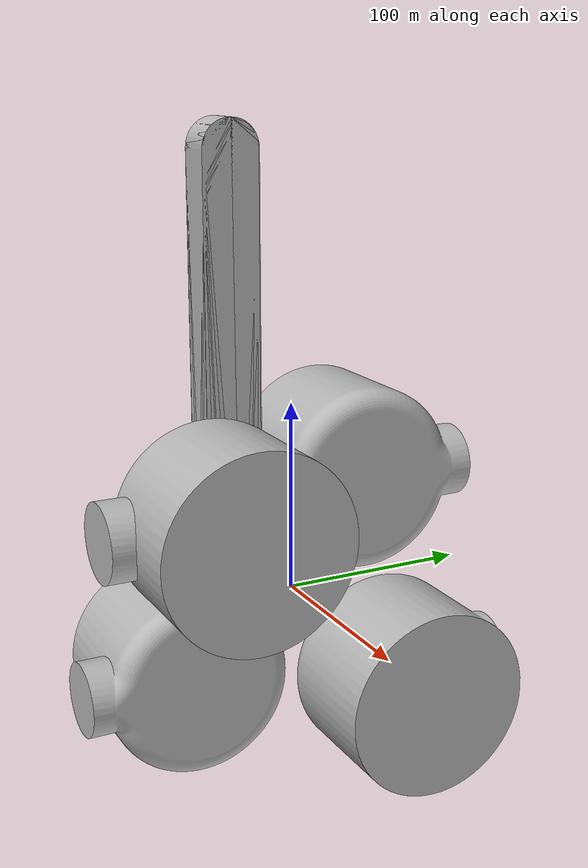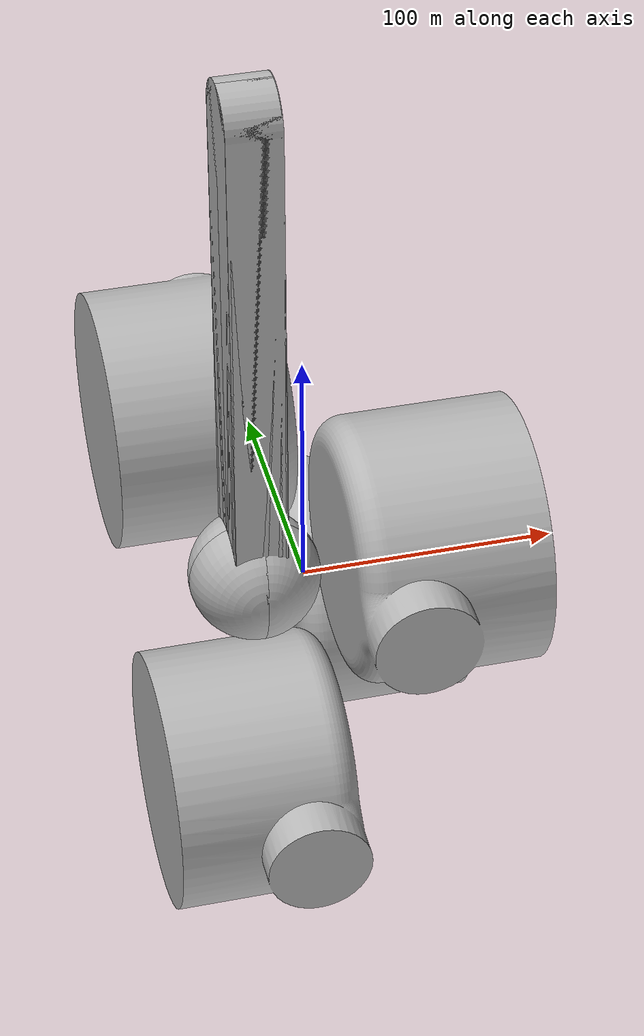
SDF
<?xml version="1.0" ?>

<sdf version="1.5">
  <model name="orthrus">

    <!-- LINK BODY -->
    <link name="body">
      <pose>0 0 0 1.5708 0 0</pose>
      <collision name="surface">
        <pose>-0.10 -0.05 -0.1385 0 0 0</pose>
        <geometry>
          <mesh>
            <uri>model://orthrus/meshes/body.STL</uri>
          </mesh>
        </geometry>
      </collision>

      <visual name="visual">
        <pose>-0.10 -0.05 -0.1385 0 0 0</pose>
        <geometry>
          <mesh>
            <uri>model://orthrus/meshes/body.STL</uri>
          </mesh>
        </geometry>
      </visual>
    </link>

    <!-- LINK HIP -->
    <link name="hip_RB">
      <pose>-0.05 0.20 0 1.5708 3.1415 0</pose>
      <collision name="surface">
        <pose>-0.02 -0.05 -0.05 0 0 0</pose>
        <geometry>
          <mesh>
            <uri>model://orthrus/meshes/hip.STL</uri>
          </mesh>
        </geometry>
      </collision>

      <visual name="visual">
        <pose>-0.02 -0.05 -0.05 0 0 0</pose>
        <geometry>
          <mesh>
            <uri>model://orthrus/meshes/hip.STL</uri>
          </mesh>
        </geometry>
      </visual>
    </link>

    <link name="hip_LB">
      <pose>0.05 0.20 0 1.5708 0 0</pose>
      <collision name="surface">
        <pose>-0.02 -0.05 -0.05 0 0 0</pose>
        <geometry>
          <mesh>
            <uri>model://orthrus/meshes/hip.STL</uri>
          </mesh>
        </geometry>
      </collision>

      <visual name="visual">
        <pose>-0.02 -0.05 -0.05 0 0 0</pose>
        <geometry>
          <mesh>
            <uri>model://orthrus/meshes/hip.STL</uri>
          </mesh>
        </geometry>
      </visual>
    </link>

    <link name="hip_RF">
      <pose>-0.05 -0.20 0 -1.5708 3.1415 0</pose>
      <collision name="surface">
        <pose>-0.02 -0.05 -0.05 0 0 0</pose>
        <geometry>
          <mesh>
            <uri>model://orthrus/meshes/hip.STL</uri>
          </mesh>
        </geometry>
      </collision>

      <visual name="visual">
        <pose>-0.02 -0.05 -0.05 0 0 0</pose>
        <geometry>
          <mesh>
            <uri>model://orthrus/meshes/hip.STL</uri>
          </mesh>
        </geometry>
      </visual>
    </link>

    <link name="hip_LF">
      <pose>0.05 -0.20 0 -1.5708 0 0</pose>
      <collision name="surface">
        <pose>-0.02 -0.05 -0.05 0 0 0</pose>
        <geometry>
          <mesh>
            <scale>1 1 1</scale>
            <uri>model://orthrus/meshes/hip.STL</uri>
          </mesh>
        </geometry>
      </collision>

      <visual name="visual">
        <pose>-0.02 -0.05 -0.05 0 0 0</pose>
        <geometry>
          <mesh>
            <uri>model://orthrus/meshes/hip.STL</uri>
          </mesh>
        </geometry>
      </visual>
    </link>

    <!-- LINK LEG1 -->
    <link name="leg1_RB">
      <pose>-0.1 0.20 0 3.1415 3.1415 0</pose>
      <collision name="surface">
        <pose>0 -0.2 -0.05 0 0 0</pose>
        <geometry>
          <mesh>
            <uri>model://orthrus/meshes/leg1.STL</uri>
          </mesh>
        </geometry>
      </collision>

      <visual name="visual">
        <pose>0 -0.2 -0.05 0 0 0</pose>
        <geometry>
          <mesh>
            <uri>model://orthrus/meshes/leg1.STL</uri>
          </mesh>
        </geometry>
      </visual>
    </link>

    <link name="leg1_LB">
      <pose>0.1 0.20 0 3.1415 0 0</pose>
      <collision name="surface">
        <pose>0 -0.2 -0.05 0 0 0</pose>
        <geometry>
          <mesh>
            <uri>model://orthrus/meshes/leg1.STL</uri>
          </mesh>
        </geometry>
      </collision>

      <visual name="visual">
        <pose>0 -0.2 -0.05 0 0 0</pose>
        <geometry>
          <mesh>
            <uri>model://orthrus/meshes/leg1.STL</uri>
          </mesh>
        </geometry>
      </visual>
    </link>

    <link name="leg1_RF">
      <pose>-0.1 -0.20 0 0 0 3.1415</pose>
      <collision name="surface">
        <pose>0 -0.2 -0.05 0 0 0</pose>
        <geometry>
          <mesh>
            <uri>model://orthrus/meshes/leg1.STL</uri>
          </mesh>
        </geometry>
      </collision>

      <visual name="visual">
        <pose>0 -0.2 -0.05 0 0 0</pose>
        <geometry>
          <mesh>
            <uri>model://orthrus/meshes/leg1.STL</uri>
          </mesh>
        </geometry>
      </visual>
    </link>

    <link name="leg1_LF">
      <pose>0.1 -0.20 0 0 3.1415 3.1415</pose>
      <collision name="surface">
        <pose>0 -0.2 -0.05 0 0 0</pose>
        <geometry>
          <mesh>
            <uri>model://orthrus/meshes/leg1.STL</uri>
          </mesh>
        </geometry>
      </collision>

      <visual name="visual">
        <pose>0 -0.2 -0.05 0 0 0</pose>
        <geometry>
          <mesh>
            <uri>model://orthrus/meshes/leg1.STL</uri>
          </mesh>
        </geometry>
      </visual>
    </link>

    <!-- LINK LEG2 -->
    <link name="leg2_RB">
      <pose>-0.1325 0.38 0 3.1415 3.1415 0</pose>
      <collision name="surface">
        <pose>-0.025 -0.025 -0.225 0 0 0</pose>
        <geometry>
          <mesh>
            <uri>model://orthrus/meshes/leg2.STL</uri>
          </mesh>
        </geometry>
      </collision>

      <visual name="visual">
        <pose>-0.025 -0.025 -0.225 0 0 0</pose>
        <geometry>
          <mesh>
            <uri>model://orthrus/meshes/leg2.STL</uri>
          </mesh>
        </geometry>
      </visual>
    </link>

    <link name="leg2_LB">
      <pose>0.1325 0.38 0 3.1415 3.1415 0</pose>
      <collision name="surface">
        <pose>-0.025 -0.025 -0.225 0 0 0</pose>
        <geometry>
          <mesh>
            <uri>model://orthrus/meshes/leg2.STL</uri>
          </mesh>
        </geometry>
      </collision>

      <visual name="visual">
        <pose>-0.025 -0.025 -0.225 0 0 0</pose>
        <geometry>
          <mesh>
            <uri>model://orthrus/meshes/leg2.STL</uri>
          </mesh>
        </geometry>
      </visual>
    </link>

    <link name="leg2_RF">
      <pose>-0.1325 -0.02 0 3.1415 3.1415 0</pose>
      <collision name="surface">
        <pose>-0.025 -0.025 -0.225 0 0 0</pose>
        <geometry>
          <mesh>
            <uri>model://orthrus/meshes/leg2.STL</uri>
          </mesh>
        </geometry>
      </collision>

      <visual name="visual">
        <pose>-0.025 -0.025 -0.225 0 0 0</pose>
        <geometry>
          <mesh>
            <uri>model://orthrus/meshes/leg2.STL</uri>
          </mesh>
        </geometry>
      </visual>
    </link>

    <link name="leg2_LF">
      <pose>0.1325 -0.02 0 3.1415 3.1415 0</pose>
      <collision name="surface">
        <pose>-0.025 -0.025 -0.225 0 0 0</pose>
        <geometry>
          <mesh>
            <uri>model://orthrus/meshes/leg2.STL</uri>
          </mesh>
        </geometry>
      </collision>

      <visual name="visual">
        <pose>-0.025 -0.025 -0.225 0 0 0</pose>
        <geometry>
          <mesh>
            <uri>model://orthrus/meshes/leg2.STL</uri>
          </mesh>
        </geometry>
      </visual>
    </link>

    <!-- JOINT HIP -->

    <joint name='joint_hip_RB' type='revolute'>
      <child>hip_RB</child>
      <parent>body</parent>
      <axis>
        <xyz>0 1 0</xyz>
        <limit>
          <lower>-1.5708</lower>
          <upper>1.5708</upper>
          <effort>35</effort>
          <velocity>3.2</velocity>
        </limit>
        <use_parent_model_frame>1</use_parent_model_frame>
      </axis>
    </joint>

    <joint name='joint_hip_LB' type='revolute'>
      <child>hip_LB</child>
      <parent>body</parent>
      <axis>
        <xyz>0 1 0</xyz>
        <limit>
          <lower>-1.5708</lower>
          <upper>1.5708</upper>
          <effort>35</effort>
          <velocity>3.2</velocity>
        </limit>
        <use_parent_model_frame>1</use_parent_model_frame>
      </axis>
    </joint>

    <joint name='joint_hip_RF' type='revolute'>
      <child>hip_RF</child>
      <parent>body</parent>
      <axis>
        <xyz>0 1 0</xyz>
        <limit>
          <lower>-1.5708</lower>
          <upper>1.5708</upper>
          <effort>35</effort>
          <velocity>3.2</velocity>
        </limit>
        <use_parent_model_frame>1</use_parent_model_frame>
      </axis>
    </joint>

    <joint name='joint_hip_LF' type='revolute'>
      <child>hip_LF</child>
      <parent>body</parent>
      <axis>
        <xyz>0 1 0</xyz>
        <limit>
          <lower>-1.5708</lower>
          <upper>1.5708</upper>
          <effort>35</effort>
          <velocity>3.2</velocity>
        </limit>
        <use_parent_model_frame>1</use_parent_model_frame>
      </axis>
    </joint>

    <!-- JOINT LEG1 -->

    <joint name='joint_leg1_RB' type='revolute'>
      <child>leg1_RB</child>
      <parent>hip_RB</parent>
      <axis>
        <xyz>1 0 0</xyz>
        <limit>
          <lower>-3.1416</lower>
          <upper>3.1416</upper>
          <effort>35</effort>
          <velocity>3.2</velocity>
        </limit>
        <use_parent_model_frame>1</use_parent_model_frame>
      </axis>
    </joint>

    <joint name='joint_leg1_LB' type='revolute'>
      <child>leg1_LB</child>
      <parent>hip_LB</parent>
      <axis>
        <xyz>1 0 0</xyz>
        <limit>
          <lower>-3.1416</lower>
          <upper>3.1416</upper>
          <effort>35</effort>
          <velocity>3.2</velocity>
        </limit>
        <use_parent_model_frame>1</use_parent_model_frame>
      </axis>
    </joint>

    <joint name='joint_leg1_RF' type='revolute'>
      <child>leg1_RF</child>
      <parent>hip_RF</parent>
      <axis>
        <xyz>1 0 0</xyz>
        <limit>
          <lower>-3.1416</lower>
          <upper>3.1416</upper>
          <effort>35</effort>
          <velocity>3.2</velocity>
        </limit>
        <use_parent_model_frame>1</use_parent_model_frame>
      </axis>
    </joint>

    <joint name='joint_leg1_LF' type='revolute'>
      <child>leg1_LF</child>
      <parent>hip_LF</parent>
      <axis>
        <xyz>1 0 0</xyz>
        <limit>
          <lower>-3.1416</lower>
          <upper>3.1416</upper>
          <effort>35</effort>
          <velocity>3.2</velocity>
        </limit>
        <use_parent_model_frame>1</use_parent_model_frame>
      </axis>
    </joint>

    <!-- JOINT LEG2 -->

    <joint name='joint_leg2_RB' type='revolute'>
      <child>leg2_RB</child>
      <parent>leg1_RB</parent>
      <axis>
        <xyz>1 0 0</xyz>
        <limit>
          <lower>-3.1416</lower>
          <upper>3.1416</upper>
          <effort>35</effort>
          <velocity>3.2</velocity>
        </limit>
        <use_parent_model_frame>1</use_parent_model_frame>
      </axis>
    </joint>

    <joint name='joint_leg2_LB' type='revolute'>
      <child>leg2_LB</child>
      <parent>leg1_LB</parent>
      <axis>
        <xyz>1 0 0</xyz>
        <limit>
          <lower>-3.1416</lower>
          <upper>3.1416</upper>
          <effort>35</effort>
          <velocity>3.2</velocity>
        </limit>
        <use_parent_model_frame>1</use_parent_model_frame>
      </axis>
    </joint>

    <joint name='joint_leg2_RF' type='revolute'>
      <child>leg2_RF</child>
      <parent>leg1_RF</parent>
      <axis>
        <xyz>1 0 0</xyz>
        <limit>
          <lower>-3.1416</lower>
          <upper>3.1416</upper>
          <effort>35</effort>
          <velocity>3.2</velocity>
        </limit>
        <use_parent_model_frame>1</use_parent_model_frame>
      </axis>
    </joint>

    <joint name='joint_leg2_LF' type='revolute'>
      <child>leg2_LF</child>
      <parent>leg1_LF</parent>
      <axis>
        <xyz>1 0 0</xyz>
        <limit>
          <lower>-3.1416</lower>
          <upper>3.1416</upper>
          <effort>35</effort>
          <velocity>3.2</velocity>
        </limit>
        <use_parent_model_frame>1</use_parent_model_frame>
      </axis>
    </joint>

  </model>
</sdf>
